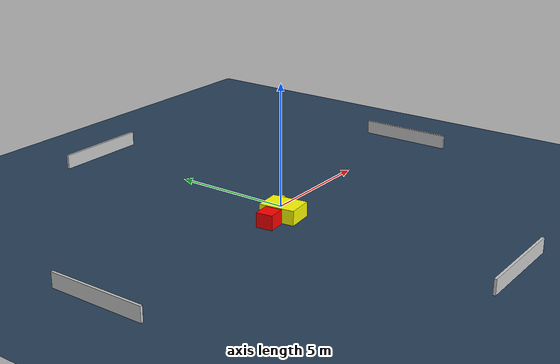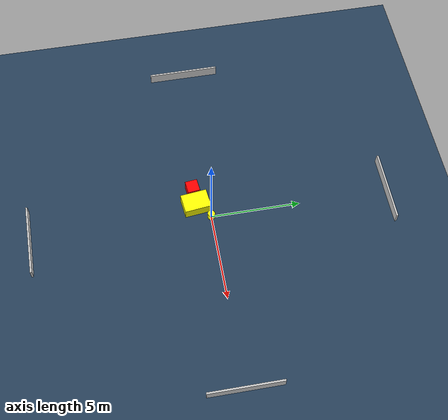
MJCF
<?xml version="1.0" ?>
<mujoco model="generated_environment">
  <option timestep="0.01" integrator="RK4" cone="elliptic"/>
  <default>
    <geom density="1"/>
  </default>
  <asset>
    <texture builtin="gradient" height="3072" name="skybox" rgb1="0.3 0.5 0.7" rgb2="0 0 0" type="skybox" width="512"/>
    <texture builtin="checker" height="300" name="groundplane" rgb1="0.2 0.3 0.4" rgb2="0.1 0.2 0.3" type="2d" width="300"/>
    <material name="groundplane" reflectance="0.2" texrepeat="5 5" texture="groundplane"/>
  </asset>
  <worldbody>
    <light dir="0 0 -1" directional="true" pos="0 0 1.5"/>
    <geom condim="3" friction="0.5 0.005 0.001" material="groundplane" name="floor" pos="0 0 0" size="0 0 0.05" type="plane"/>
    <body name="walls">
      <geom name="wall_1" condim="4" pos="-10.0 0.0 0.3" rgba="0.800000011920929 0.800000011920929 0.800000011920929 1.0" size="0.05 2.0 0.3" type="box"/>
      <geom name="wall_2" condim="4" pos="10.0 0.0 0.3" rgba="0.800000011920929 0.800000011920929 0.800000011920929 1.0" size="0.05 2.0 0.3" type="box"/>
      <geom name="wall_3" condim="4" pos="0.0 -10.0 0.3" rgba="0.800000011920929 0.800000011920929 0.800000011920929 1.0" size="2.0 0.05 0.3" type="box"/>
      <geom name="wall_4" condim="4" pos="0.0 10.0 0.3" rgba="0.800000011920929 0.800000011920929 0.800000011920929 1.0" size="2.0 0.05 0.3" type="box"/>
    </body>
    <body name="robot">
      <joint name="joint_x" type="slide" pos="0 0 0" axis="1 0 0"/>
      <joint name="joint_y" type="slide" pos="0 0 0" axis="0 1 0"/>
      <geom name="robot" type="cylinder" pos="0.0 0.0 0.2" size="0.2 0.2 0.0" mass="5.0" friction="1.0 0.005 0.0001" condim="4" rgba="1.0 1.0 0.0 1.0"/>
    </body>
    <body name="obstacle_1_movable">
      <geom name="obstacle_1_movable" condim="4" pos="-0.8341019031721706 -0.7264886600420427 0.3" euler="0 0 96.52400874305525" friction="0.0 0.005 0.001" rgba="1.0 1.0 0.0 1.0" size="0.7426881751544459 0.547074534118794 0.3" type="box" mass="0.1"/>
      <joint type="free"/>
    </body>
    <body name="obstacle_2_static">
      <geom name="obstacle_2_static" condim="4" pos="-1.8041408804779606 -0.7583851700629731 0.3" euler="0 0 276.4232367978678" friction="0.0 0.005 0.001" rgba="1.0 0.0 0.0 1.0" size="0.3406980350130582 0.36043647221434705 0.3" type="box"/>
    </body>
  </worldbody>
  <actuator>
    <motor name="actuator_x" joint="joint_x" gear="1" ctrlrange="-1 1"/>
    <motor name="actuator_y" joint="joint_y" gear="1" ctrlrange="-1 1"/>
  </actuator>
</mujoco>
